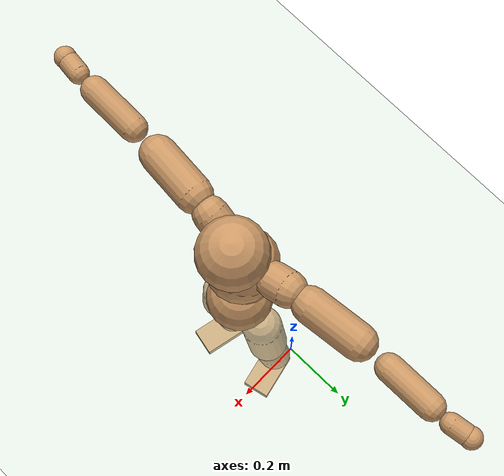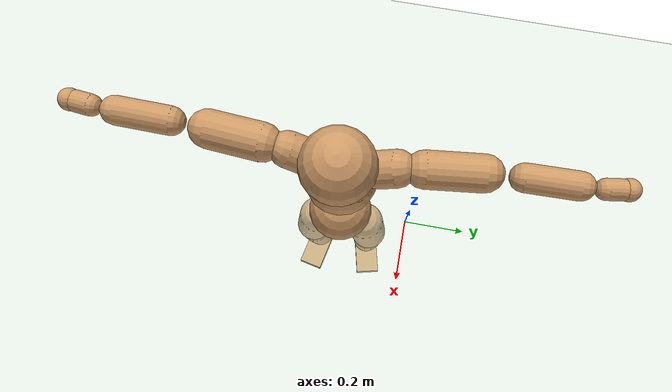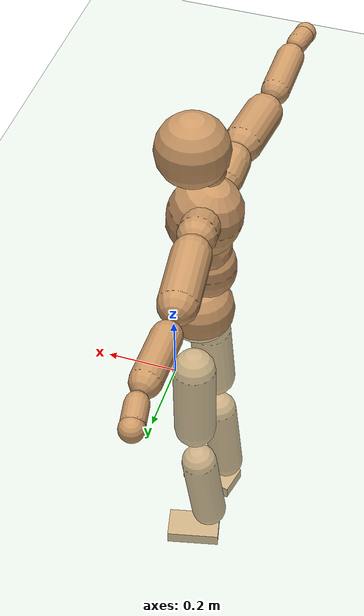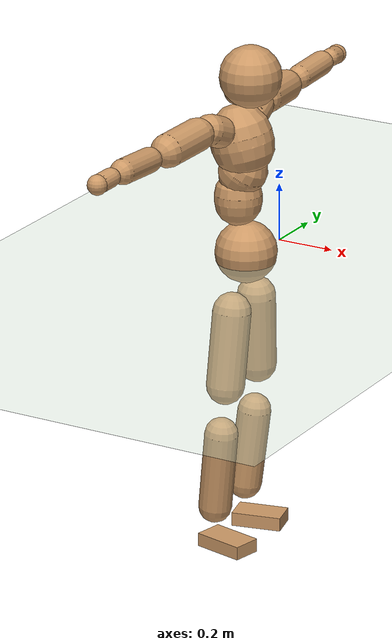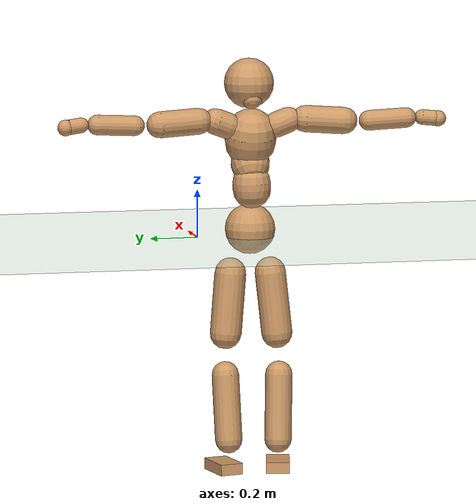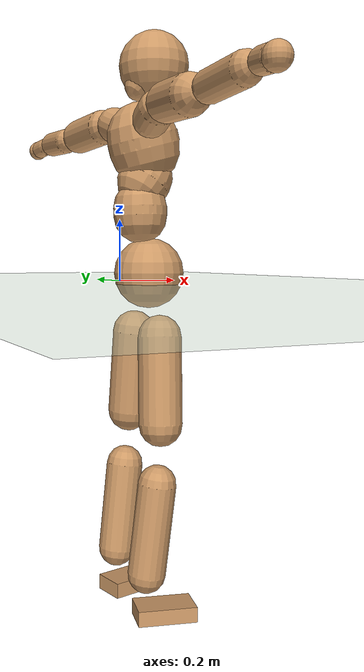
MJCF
<mujoco model="humanoid">
  <compiler coordinate="local" angle="radian"/>
  <default>
    <joint damping="0.0" armature="0.01" stiffness="0.0" limited="true"/>
    <geom conaffinity="1" condim="3" contype="7" margin="0.001" rgba="0.8 0.6 .4 1"/>
  </default>
  <asset>
    <texture type="skybox" builtin="gradient" rgb1=".4 .5 .6" rgb2="0 0 0" width="100" height="100"/>
    <texture builtin="flat" height="1278" mark="cross" markrgb="1 1 1" name="texgeom" random="0.01" rgb1="0.8 0.6 0.4" rgb2="0.8 0.6 0.4" type="cube" width="127"/>
    <texture builtin="checker" height="100" name="texplane" rgb1="0 0 0" rgb2="0.8 0.8 0.8" type="2d" width="100"/>
    <material name="MatPlane" reflectance="0.5" shininess="1" specular="1" texrepeat="60 60" texture="texplane"/>
    <material name="geom" texture="texgeom" texuniform="true"/>
  </asset>
  <worldbody>
    <light cutoff="100" diffuse="1 1 1" dir="-0 0 -1.3" directional="true" exponent="1" pos="0 0 1.3" specular=".1 .1 .1"/>
    <geom conaffinity="1" condim="3" name="floor" pos="0 0 0" rgba="0.8 0.9 0.8 1" size="100 100 .2" type="plane" material="MatPlane"/>
    <body name="Pelvis" pos="-0.0011 -0.2243 0.0315">
      <freejoint name="Pelvis"/>
      <geom type="sphere" contype="1" conaffinity="1" density="500" size="0.1057" pos="0.0000 0.0000 0.0000" name="Pelvis"/>
      <body name="L_Hip" pos="-0.0069 0.0796 -0.1006">
        <joint name="L_Hip_x" type="hinge" pos="0 0 0" axis="1 0 0" stiffness="800" damping="80" armature="0.02" range="-180.0000 180.0000"/>
        <joint name="L_Hip_y" type="hinge" pos="0 0 0" axis="0 1 0" stiffness="800" damping="80" armature="0.02" range="-180.0000 180.0000"/>
        <joint name="L_Hip_z" type="hinge" pos="0 0 0" axis="0 0 1" stiffness="800" damping="80" armature="0.02" range="-180.0000 180.0000"/>
        <geom type="capsule" contype="1" conaffinity="1" density="500" fromto="-0.0026 0.0071 -0.0844 -0.0103 0.0284 -0.3375" size="0.066" name="L_Hip"/>
        <body name="L_Knee" pos="-0.0129 0.0355 -0.4218">
          <joint name="L_Knee_x" type="hinge" pos="0 0 0" axis="1 0 0" stiffness="800" damping="80" armature="0.02" range="-180.0000 180.0000"/>
          <joint name="L_Knee_y" type="hinge" pos="0 0 0" axis="0 1 0" stiffness="800" damping="80" armature="0.02" range="-180.0000 180.0000"/>
          <joint name="L_Knee_z" type="hinge" pos="0 0 0" axis="0 0 1" stiffness="800" damping="80" armature="0.02" range="-180.0000 180.0000"/>
          <geom type="capsule" contype="1" conaffinity="1" density="500" fromto="-0.0103 -0.0025 -0.0906 -0.0413 -0.0100 -0.3625" size="0.0569" name="L_Knee"/>
          <body name="L_Ankle" pos="-0.0516 -0.0125 -0.4531">
            <joint name="L_Ankle_x" type="hinge" pos="0 0 0" axis="1 0 0" stiffness="800" damping="80" armature="0.02" range="-180.0000 180.0000"/>
            <joint name="L_Ankle_y" type="hinge" pos="0 0 0" axis="0 1 0" stiffness="800" damping="80" armature="0.02" range="-180.0000 180.0000"/>
            <joint name="L_Ankle_z" type="hinge" pos="0 0 0" axis="0 0 1" stiffness="800" damping="80" armature="0.02" range="-180.0000 180.0000"/>
            <geom type="box" contype="1" conaffinity="1" density="500" pos="0.0617 0.0140 -0.0320" size="0.0861 0.0495 0.0235" quat="0.9938 0.0000 0.0000 0.1110" name="L_Ankle"/>
            <body name="L_Toe" pos="0.1235 0.0279 -0.0639">
              <joint name="L_Toe_x" type="hinge" pos="0 0 0" axis="1 0 0" stiffness="500" damping="50" armature="0.02" range="-180.0000 180.0000"/>
              <joint name="L_Toe_y" type="hinge" pos="0 0 0" axis="0 1 0" stiffness="500" damping="50" armature="0.02" range="-180.0000 180.0000"/>
              <joint name="L_Toe_z" type="hinge" pos="0 0 0" axis="0 0 1" stiffness="500" damping="50" armature="0.02" range="-180.0000 180.0000"/>
              <geom type="box" contype="1" conaffinity="1" density="500" pos="0.0000 0.0000 0.0315" size="0.001 0.0025 0.0012" quat="0.9932 0.0000 0.0000 0.1168" name="L_Toe"/>
            </body>
          </body>
        </body>
      </body>
      <body name="R_Hip" pos="-0.002 -0.0767 -0.101">
        <joint name="R_Hip_x" type="hinge" pos="0 0 0" axis="1 0 0" stiffness="800" damping="80" armature="0.02" range="-180.0000 180.0000"/>
        <joint name="R_Hip_y" type="hinge" pos="0 0 0" axis="0 1 0" stiffness="800" damping="80" armature="0.02" range="-180.0000 180.0000"/>
        <joint name="R_Hip_z" type="hinge" pos="0 0 0" axis="0 0 1" stiffness="800" damping="80" armature="0.02" range="-180.0000 180.0000"/>
        <geom type="capsule" contype="1" conaffinity="1" density="500" fromto="-0.0030 -0.0089 -0.0856 -0.0121 -0.0356 -0.3424" size="0.0651" name="R_Hip"/>
        <body name="R_Knee" pos="-0.0152 -0.0445 -0.428">
          <joint name="R_Knee_x" type="hinge" pos="0 0 0" axis="1 0 0" stiffness="800" damping="80" armature="0.02" range="-180.0000 180.0000"/>
          <joint name="R_Knee_y" type="hinge" pos="0 0 0" axis="0 1 0" stiffness="800" damping="80" armature="0.02" range="-180.0000 180.0000"/>
          <joint name="R_Knee_z" type="hinge" pos="0 0 0" axis="0 0 1" stiffness="800" damping="80" armature="0.02" range="-180.0000 180.0000"/>
          <geom type="capsule" contype="1" conaffinity="1" density="500" fromto="-0.0098 0.0032 -0.0908 -0.0391 0.0128 -0.3632" size="0.057" name="R_Knee"/>
          <body name="R_Ankle" pos="-0.0488 0.016 -0.4541">
            <joint name="R_Ankle_x" type="hinge" pos="0 0 0" axis="1 0 0" stiffness="800" damping="80" armature="0.02" range="-180.0000 180.0000"/>
            <joint name="R_Ankle_y" type="hinge" pos="0 0 0" axis="0 1 0" stiffness="800" damping="80" armature="0.02" range="-180.0000 180.0000"/>
            <joint name="R_Ankle_z" type="hinge" pos="0 0 0" axis="0 0 1" stiffness="800" damping="80" armature="0.02" range="-180.0000 180.0000"/>
            <geom type="box" contype="1" conaffinity="1" density="500" pos="0.0640 -0.0143 -0.0277" size="0.0891 0.0495 0.0231" quat="0.9940 0.0000 0.0000 -0.1094" name="R_Ankle"/>
            <body name="R_Toe" pos="0.1281 -0.0285 -0.0554">
              <joint name="R_Toe_x" type="hinge" pos="0 0 0" axis="1 0 0" stiffness="500" damping="50" armature="0.02" range="-180.0000 180.0000"/>
              <joint name="R_Toe_y" type="hinge" pos="0 0 0" axis="0 1 0" stiffness="500" damping="50" armature="0.02" range="-180.0000 180.0000"/>
              <joint name="R_Toe_z" type="hinge" pos="0 0 0" axis="0 0 1" stiffness="500" damping="50" armature="0.02" range="-180.0000 180.0000"/>
              <geom type="box" contype="1" conaffinity="1" density="500" pos="0.0000 0.0000 0.0300" size="0.0009 0.0024 0.0013" quat="0.9949 0.0000 0.0000 -0.1005" name="R_Toe"/>
            </body>
          </body>
        </body>
      </body>
      <body name="Torso" pos="-0.0283 -0.0028 0.1163">
        <joint name="Torso_x" type="hinge" pos="0 0 0" axis="1 0 0" stiffness="1000" damping="100" armature="0.02" range="-180.0000 180.0000"/>
        <joint name="Torso_y" type="hinge" pos="0 0 0" axis="0 1 0" stiffness="1000" damping="100" armature="0.02" range="-180.0000 180.0000"/>
        <joint name="Torso_z" type="hinge" pos="0 0 0" axis="0 0 1" stiffness="1000" damping="100" armature="0.02" range="-180.0000 180.0000"/>
        <geom type="capsule" contype="1" conaffinity="1" density="500" fromto="-0.0014 0.0026 0.0806 -0.0010 0.0017 0.0537" size="0.0803" name="Torso"/>
        <body name="Spine" pos="-0.0024 0.0043 0.1343">
          <joint name="Spine_x" type="hinge" pos="0 0 0" axis="1 0 0" stiffness="1000" damping="100" armature="0.02" range="-180.0000 180.0000"/>
          <joint name="Spine_y" type="hinge" pos="0 0 0" axis="0 1 0" stiffness="1000" damping="100" armature="0.02" range="-180.0000 180.0000"/>
          <joint name="Spine_z" type="hinge" pos="0 0 0" axis="0 0 1" stiffness="1000" damping="100" armature="0.02" range="-180.0000 180.0000"/>
          <geom type="capsule" contype="1" conaffinity="1" density="500" fromto="0.0209 0.0008 0.0325 0.0139 0.0005 0.0217" size="0.0808" name="Spine"/>
          <body name="Chest" pos="0.0348 0.0013 0.0542">
            <joint name="Chest_x" type="hinge" pos="0 0 0" axis="1 0 0" stiffness="1000" damping="100" armature="0.02" range="-180.0000 180.0000"/>
            <joint name="Chest_y" type="hinge" pos="0 0 0" axis="0 1 0" stiffness="1000" damping="100" armature="0.02" range="-180.0000 180.0000"/>
            <joint name="Chest_z" type="hinge" pos="0 0 0" axis="0 0 1" stiffness="1000" damping="100" armature="0.02" range="-180.0000 180.0000"/>
            <geom type="capsule" contype="1" conaffinity="1" density="500" fromto="-0.0268 -0.0011 0.0972 -0.0179 -0.0007 0.0648" size="0.1067" name="Chest"/>
            <body name="Neck" pos="-0.0486 -0.0039 0.232">
              <joint name="Neck_x" type="hinge" pos="0 0 0" axis="1 0 0" stiffness="500" damping="50" armature="0.02" range="-180.0000 180.0000"/>
              <joint name="Neck_y" type="hinge" pos="0 0 0" axis="0 1 0" stiffness="500" damping="50" armature="0.02" range="-180.0000 180.0000"/>
              <joint name="Neck_z" type="hinge" pos="0 0 0" axis="0 0 1" stiffness="500" damping="50" armature="0.02" range="-180.0000 180.0000"/>
              <geom type="capsule" contype="1" conaffinity="1" density="500" fromto="0.0119 0.0005 0.0148 0.0476 0.0019 0.0594" size="0.0448" name="Neck"/>
              <body name="Head" pos="0.0594 0.0024 0.0742">
                <joint name="Head_x" type="hinge" pos="0 0 0" axis="1 0 0" stiffness="500" damping="50" armature="0.02" range="-180.0000 180.0000"/>
                <joint name="Head_y" type="hinge" pos="0 0 0" axis="0 1 0" stiffness="500" damping="50" armature="0.02" range="-180.0000 180.0000"/>
                <joint name="Head_z" type="hinge" pos="0 0 0" axis="0 0 1" stiffness="500" damping="50" armature="0.02" range="-180.0000 180.0000"/>
                <geom type="sphere" contype="1" conaffinity="1" density="500" size="0.1045" pos="0.0000 0.0000 0.0000" name="Head"/>
              </body>
            </body>
            <body name="L_Thorax" pos="-0.0405 0.083 0.1277">
              <joint name="L_Thorax_x" type="hinge" pos="0 0 0" axis="1 0 0" stiffness="500" damping="50" armature="0.02" range="-180.0000 180.0000"/>
              <joint name="L_Thorax_y" type="hinge" pos="0 0 0" axis="0 1 0" stiffness="500" damping="50" armature="0.02" range="-180.0000 180.0000"/>
              <joint name="L_Thorax_z" type="hinge" pos="0 0 0" axis="0 0 1" stiffness="500" damping="50" armature="0.02" range="-180.0000 180.0000"/>
              <geom type="capsule" contype="1" conaffinity="1" density="500" fromto="-0.0023 0.0175 0.0067 -0.0092 0.0701 0.0270" size="0.0548" name="L_Thorax"/>
              <body name="L_Shoulder" pos="-0.0115 0.0876 0.0337">
                <joint name="L_Shoulder_x" type="hinge" pos="0 0 0" axis="1 0 0" stiffness="500" damping="50" armature="0.02" range="-720.0000 720.0000"/>
                <joint name="L_Shoulder_y" type="hinge" pos="0 0 0" axis="0 1 0" stiffness="500" damping="50" armature="0.02" range="-720.0000 720.0000"/>
                <joint name="L_Shoulder_z" type="hinge" pos="0 0 0" axis="0 0 1" stiffness="500" damping="50" armature="0.02" range="-720.0000 720.0000"/>
                <geom type="capsule" contype="1" conaffinity="1" density="500" fromto="-0.0065 0.0558 -0.0030 -0.0260 0.2231 -0.0121" size="0.055" name="L_Shoulder"/>
                <body name="L_Elbow" pos="-0.0325 0.2789 -0.0151">
                  <joint name="L_Elbow_x" type="hinge" pos="0 0 0" axis="1 0 0" stiffness="500" damping="50" armature="0.02" range="-720.0000 720.0000"/>
                  <joint name="L_Elbow_y" type="hinge" pos="0 0 0" axis="0 1 0" stiffness="500" damping="50" armature="0.02" range="-720.0000 720.0000"/>
                  <joint name="L_Elbow_z" type="hinge" pos="0 0 0" axis="0 0 1" stiffness="500" damping="50" armature="0.02" range="-720.0000 720.0000"/>
                  <geom type="capsule" contype="1" conaffinity="1" density="500" fromto="0.0000 0.0516 0.0024 0.0000 0.2062 0.0096" size="0.0419" name="L_Elbow"/>
                  <body name="L_Wrist" pos="0 0.2578 0.0121">
                    <joint name="L_Wrist_x" type="hinge" pos="0 0 0" axis="1 0 0" stiffness="300" damping="30" armature="0.02" range="-180.0000 180.0000"/>
                    <joint name="L_Wrist_y" type="hinge" pos="0 0 0" axis="0 1 0" stiffness="300" damping="30" armature="0.02" range="-180.0000 180.0000"/>
                    <joint name="L_Wrist_z" type="hinge" pos="0 0 0" axis="0 0 1" stiffness="300" damping="30" armature="0.02" range="-180.0000 180.0000"/>
                    <geom type="capsule" contype="1" conaffinity="1" density="500" fromto="-0.0028 0.0166 -0.0020 -0.0110 0.0665 -0.0081" size="0.0315" name="L_Wrist"/>
                    <body name="L_Hand" pos="-0.0138 0.0832 -0.0101">
                      <joint name="L_Hand_x" type="hinge" pos="0 0 0" axis="1 0 0" stiffness="300" damping="30" armature="0.02" range="-180.0000 180.0000"/>
                      <joint name="L_Hand_y" type="hinge" pos="0 0 0" axis="0 1 0" stiffness="300" damping="30" armature="0.02" range="-180.0000 180.0000"/>
                      <joint name="L_Hand_z" type="hinge" pos="0 0 0" axis="0 0 1" stiffness="300" damping="30" armature="0.02" range="-180.0000 180.0000"/>
                      <geom type="sphere" contype="1" conaffinity="1" density="500" size="0.0335" pos="0.0000 0.0000 0.0000" name="L_Hand"/>
                    </body>
                  </body>
                </body>
              </body>
            </body>
            <body name="R_Thorax" pos="-0.045 -0.0845 0.1264">
              <joint name="R_Thorax_x" type="hinge" pos="0 0 0" axis="1 0 0" stiffness="500" damping="50" armature="0.02" range="-180.0000 180.0000"/>
              <joint name="R_Thorax_y" type="hinge" pos="0 0 0" axis="0 1 0" stiffness="500" damping="50" armature="0.02" range="-180.0000 180.0000"/>
              <joint name="R_Thorax_z" type="hinge" pos="0 0 0" axis="0 0 1" stiffness="500" damping="50" armature="0.02" range="-180.0000 180.0000"/>
              <geom type="capsule" contype="1" conaffinity="1" density="500" fromto="-0.0020 -0.0178 0.0071 -0.0080 -0.0712 0.0286" size="0.0534" name="R_Thorax"/>
              <body name="R_Shoulder" pos="-0.01 -0.089 0.0357">
                <joint name="R_Shoulder_x" type="hinge" pos="0 0 0" axis="1 0 0" stiffness="500" damping="50" armature="0.02" range="-720.0000 720.0000"/>
                <joint name="R_Shoulder_y" type="hinge" pos="0 0 0" axis="0 1 0" stiffness="500" damping="50" armature="0.02" range="-720.0000 720.0000"/>
                <joint name="R_Shoulder_z" type="hinge" pos="0 0 0" axis="0 0 1" stiffness="500" damping="50" armature="0.02" range="-720.0000 720.0000"/>
                <geom type="capsule" contype="1" conaffinity="1" density="500" fromto="-0.0053 -0.0535 -0.0034 -0.0210 -0.2141 -0.0135" size="0.0566" name="R_Shoulder"/>
                <body name="R_Elbow" pos="-0.0263 -0.2676 -0.0169">
                  <joint name="R_Elbow_x" type="hinge" pos="0 0 0" axis="1 0 0" stiffness="500" damping="50" armature="0.02" range="-720.0000 720.0000"/>
                  <joint name="R_Elbow_y" type="hinge" pos="0 0 0" axis="0 1 0" stiffness="500" damping="50" armature="0.02" range="-720.0000 720.0000"/>
                  <joint name="R_Elbow_z" type="hinge" pos="0 0 0" axis="0 0 1" stiffness="500" damping="50" armature="0.02" range="-720.0000 720.0000"/>
                  <geom type="capsule" contype="1" conaffinity="1" density="500" fromto="-0.0006 -0.0531 0.0026 -0.0024 -0.2123 0.0103" size="0.0424" name="R_Elbow"/>
                  <body name="R_Wrist" pos="-0.003 -0.2654 0.0128">
                    <joint name="R_Wrist_x" type="hinge" pos="0 0 0" axis="1 0 0" stiffness="300" damping="30" armature="0.02" range="-180.0000 180.0000"/>
                    <joint name="R_Wrist_y" type="hinge" pos="0 0 0" axis="0 1 0" stiffness="300" damping="30" armature="0.02" range="-180.0000 180.0000"/>
                    <joint name="R_Wrist_z" type="hinge" pos="0 0 0" axis="0 0 1" stiffness="300" damping="30" armature="0.02" range="-180.0000 180.0000"/>
                    <geom type="capsule" contype="1" conaffinity="1" density="500" fromto="-0.0021 -0.0166 -0.0015 -0.0086 -0.0663 -0.0060" size="0.032" name="R_Wrist"/>
                    <body name="R_Hand" pos="-0.0107 -0.0829 -0.0075">
                      <joint name="R_Hand_x" type="hinge" pos="0 0 0" axis="1 0 0" stiffness="300" damping="30" armature="0.02" range="-180.0000 180.0000"/>
                      <joint name="R_Hand_y" type="hinge" pos="0 0 0" axis="0 1 0" stiffness="300" damping="30" armature="0.02" range="-180.0000 180.0000"/>
                      <joint name="R_Hand_z" type="hinge" pos="0 0 0" axis="0 0 1" stiffness="300" damping="30" armature="0.02" range="-180.0000 180.0000"/>
                      <geom type="sphere" contype="1" conaffinity="1" density="500" size="0.0334" pos="0.0000 0.0000 0.0000" name="R_Hand"/>
                    </body>
                  </body>
                </body>
              </body>
            </body>
          </body>
        </body>
      </body>
    </body>
  </worldbody>
  <actuator>
    <motor name="L_Hip_x" joint="L_Hip_x" gear="500"/>
    <motor name="L_Hip_y" joint="L_Hip_y" gear="500"/>
    <motor name="L_Hip_z" joint="L_Hip_z" gear="500"/>
    <motor name="L_Knee_x" joint="L_Knee_x" gear="500"/>
    <motor name="L_Knee_y" joint="L_Knee_y" gear="500"/>
    <motor name="L_Knee_z" joint="L_Knee_z" gear="500"/>
    <motor name="L_Ankle_x" joint="L_Ankle_x" gear="500"/>
    <motor name="L_Ankle_y" joint="L_Ankle_y" gear="500"/>
    <motor name="L_Ankle_z" joint="L_Ankle_z" gear="500"/>
    <motor name="L_Toe_x" joint="L_Toe_x" gear="500"/>
    <motor name="L_Toe_y" joint="L_Toe_y" gear="500"/>
    <motor name="L_Toe_z" joint="L_Toe_z" gear="500"/>
    <motor name="R_Hip_x" joint="R_Hip_x" gear="500"/>
    <motor name="R_Hip_y" joint="R_Hip_y" gear="500"/>
    <motor name="R_Hip_z" joint="R_Hip_z" gear="500"/>
    <motor name="R_Knee_x" joint="R_Knee_x" gear="500"/>
    <motor name="R_Knee_y" joint="R_Knee_y" gear="500"/>
    <motor name="R_Knee_z" joint="R_Knee_z" gear="500"/>
    <motor name="R_Ankle_x" joint="R_Ankle_x" gear="500"/>
    <motor name="R_Ankle_y" joint="R_Ankle_y" gear="500"/>
    <motor name="R_Ankle_z" joint="R_Ankle_z" gear="500"/>
    <motor name="R_Toe_x" joint="R_Toe_x" gear="500"/>
    <motor name="R_Toe_y" joint="R_Toe_y" gear="500"/>
    <motor name="R_Toe_z" joint="R_Toe_z" gear="500"/>
    <motor name="Torso_x" joint="Torso_x" gear="500"/>
    <motor name="Torso_y" joint="Torso_y" gear="500"/>
    <motor name="Torso_z" joint="Torso_z" gear="500"/>
    <motor name="Spine_x" joint="Spine_x" gear="500"/>
    <motor name="Spine_y" joint="Spine_y" gear="500"/>
    <motor name="Spine_z" joint="Spine_z" gear="500"/>
    <motor name="Chest_x" joint="Chest_x" gear="500"/>
    <motor name="Chest_y" joint="Chest_y" gear="500"/>
    <motor name="Chest_z" joint="Chest_z" gear="500"/>
    <motor name="Neck_x" joint="Neck_x" gear="500"/>
    <motor name="Neck_y" joint="Neck_y" gear="500"/>
    <motor name="Neck_z" joint="Neck_z" gear="500"/>
    <motor name="Head_x" joint="Head_x" gear="500"/>
    <motor name="Head_y" joint="Head_y" gear="500"/>
    <motor name="Head_z" joint="Head_z" gear="500"/>
    <motor name="L_Thorax_x" joint="L_Thorax_x" gear="500"/>
    <motor name="L_Thorax_y" joint="L_Thorax_y" gear="500"/>
    <motor name="L_Thorax_z" joint="L_Thorax_z" gear="500"/>
    <motor name="L_Shoulder_x" joint="L_Shoulder_x" gear="500"/>
    <motor name="L_Shoulder_y" joint="L_Shoulder_y" gear="500"/>
    <motor name="L_Shoulder_z" joint="L_Shoulder_z" gear="500"/>
    <motor name="L_Elbow_x" joint="L_Elbow_x" gear="500"/>
    <motor name="L_Elbow_y" joint="L_Elbow_y" gear="500"/>
    <motor name="L_Elbow_z" joint="L_Elbow_z" gear="500"/>
    <motor name="L_Wrist_x" joint="L_Wrist_x" gear="500"/>
    <motor name="L_Wrist_y" joint="L_Wrist_y" gear="500"/>
    <motor name="L_Wrist_z" joint="L_Wrist_z" gear="500"/>
    <motor name="L_Hand_x" joint="L_Hand_x" gear="500"/>
    <motor name="L_Hand_y" joint="L_Hand_y" gear="500"/>
    <motor name="L_Hand_z" joint="L_Hand_z" gear="500"/>
    <motor name="R_Thorax_x" joint="R_Thorax_x" gear="500"/>
    <motor name="R_Thorax_y" joint="R_Thorax_y" gear="500"/>
    <motor name="R_Thorax_z" joint="R_Thorax_z" gear="500"/>
    <motor name="R_Shoulder_x" joint="R_Shoulder_x" gear="500"/>
    <motor name="R_Shoulder_y" joint="R_Shoulder_y" gear="500"/>
    <motor name="R_Shoulder_z" joint="R_Shoulder_z" gear="500"/>
    <motor name="R_Elbow_x" joint="R_Elbow_x" gear="500"/>
    <motor name="R_Elbow_y" joint="R_Elbow_y" gear="500"/>
    <motor name="R_Elbow_z" joint="R_Elbow_z" gear="500"/>
    <motor name="R_Wrist_x" joint="R_Wrist_x" gear="500"/>
    <motor name="R_Wrist_y" joint="R_Wrist_y" gear="500"/>
    <motor name="R_Wrist_z" joint="R_Wrist_z" gear="500"/>
    <motor name="R_Hand_x" joint="R_Hand_x" gear="500"/>
    <motor name="R_Hand_y" joint="R_Hand_y" gear="500"/>
    <motor name="R_Hand_z" joint="R_Hand_z" gear="500"/>
  </actuator>
  <contact>
    <exclude body1="Torso" body2="Chest"/>
    <exclude body1="Head" body2="Chest"/>
    <exclude body1="R_Knee" body2="R_Toe"/>
    <exclude body1="R_Knee" body2="L_Ankle"/>
    <exclude body1="R_Knee" body2="L_Toe"/>
    <exclude body1="L_Knee" body2="L_Toe"/>
    <exclude body1="L_Knee" body2="R_Ankle"/>
    <exclude body1="L_Knee" body2="R_Toe"/>
    <exclude body1="L_Shoulder" body2="Chest"/>
    <exclude body1="R_Shoulder" body2="Chest"/>
  </contact>
  <sensor/>
  <size njmax="700" nconmax="700"/>
</mujoco>
